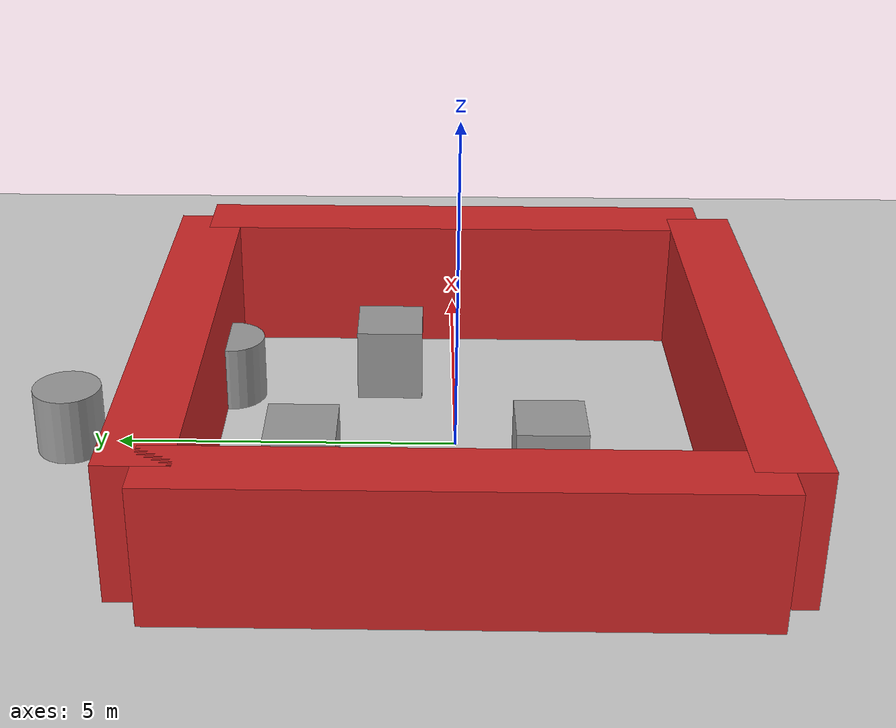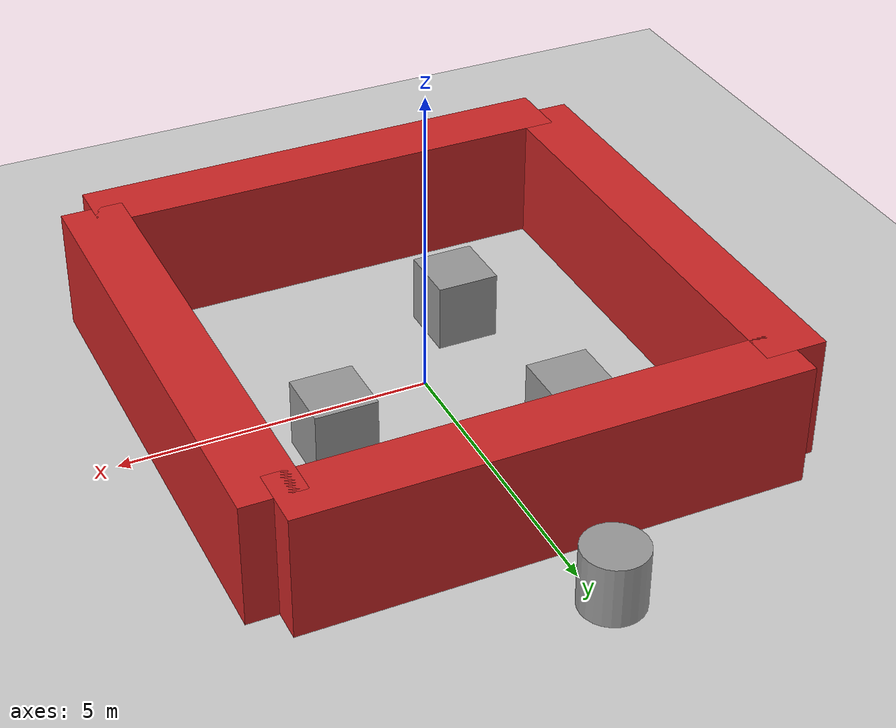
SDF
<sdf version="1.7">
 <world name="default">
  <light name="sun" type="directional">
   <pose>0 0 10 0 -0 0</pose>
   <diffuse>0.8 0.8 0.8 1</diffuse>
   <specular>0.2 0.2 0.2 1</specular>
   <attenuation>
    <range>1000</range>
    <constant>0.9</constant>
    <linear>0.01</linear>
    <quadratic>0.001</quadratic>
   </attenuation>
   <direction>-0.5 0.1 -0.9</direction>
   <spot><inner_angle>0</inner_angle><outer_angle>0</outer_angle><falloff>0</falloff></spot>
  </light>
  <model name="ground_plane">
   <static>1</static>
   <link name="link">
    <collision name="collision">
     <geometry><plane><normal>0 0 1</normal><size>100 100</size></plane></geometry>
     <surface><friction><ode><mu>100</mu><mu2>50</mu2></ode></friction></surface>
    </collision>
    <visual name="visual">
     <cast_shadows>0</cast_shadows>
     <geometry><plane><normal>0 0 1</normal><size>100 100</size></plane></geometry>
     <material>
      <script><uri>file://media/materials/scripts/gazebo.material</uri><name>Gazebo/Grey</name></script>
     </material>
    </visual>
   </link>
  </model>
  <gravity>0 0 -9.8</gravity>
  <magnetic_field>6e-06 2.3e-05 -4.2e-05</magnetic_field>
  <atmosphere type="adiabatic"/>
  <physics type="ode">
   <max_step_size>0.001</max_step_size>
   <real_time_factor>1</real_time_factor>
   <real_time_update_rate>1000</real_time_update_rate>
  </physics>
  <scene><ambient>0.4 0.4 0.4 1</ambient><background>0.7 0.7 0.7 1</background><shadows>1</shadows></scene>
  <audio><device>default</device></audio>
  <spherical_coordinates>
   <surface_model>EARTH_WGS84</surface_model>
   <latitude_deg>0</latitude_deg>
   <longitude_deg>0</longitude_deg>
   <elevation>0</elevation>
   <heading_deg>0</heading_deg>
  </spherical_coordinates>
  <model name="exterior_wall_1">
   <static>1</static>
   <pose>0 4 1 0 0 0</pose>
   <link name="link">
    <collision name="collision"><geometry><box><size>8 1 2</size></box></geometry></collision>
    <visual name="visual">
     <geometry><box><size>8 1 2</size></box></geometry>
     <material>
      <script><uri>file://media/materials/scripts/gazebo.material</uri><name>Gazebo/Red</name></script>
     </material>
    </visual>
   </link>
  </model>
  <model name="exterior_wall_2">
   <static>1</static>
   <pose>0 -4 1 0 0 0</pose>
   <link name="link">
    <collision name="collision"><geometry><box><size>8 1 2</size></box></geometry></collision>
    <visual name="visual">
     <geometry><box><size>8 1 2</size></box></geometry>
     <material>
      <script><uri>file://media/materials/scripts/gazebo.material</uri><name>Gazebo/Red</name></script>
     </material>
    </visual>
   </link>
  </model>
  <model name="exterior_wall_3">
   <static>1</static>
   <pose>4 0 1 0 0 1.5708</pose>
   <link name="link">
    <collision name="collision"><geometry><box><size>8 1 2</size></box></geometry></collision>
    <visual name="visual">
     <geometry><box><size>8 1 2</size></box></geometry>
     <material>
      <script><uri>file://media/materials/scripts/gazebo.material</uri><name>Gazebo/Red</name></script>
     </material>
    </visual>
   </link>
  </model>
  <model name="exterior_wall_4">
   <static>1</static>
   <pose>-4 0 1 0 0 1.5708</pose>
   <link name="link">
    <collision name="collision"><geometry><box><size>8 1 2</size></box></geometry></collision>
    <visual name="visual">
     <geometry><box><size>8 1 2</size></box></geometry>
     <material>
      <script><uri>file://media/materials/scripts/gazebo.material</uri><name>Gazebo/Red</name></script>
     </material>
    </visual>
   </link>
  </model>
  <model name="unit_box">
   <pose>-1.38445 2.15506 0.499995 0 1e-05 0</pose>
   <link name="link">
    <inertial>
     <mass>1</mass>
     <inertia>
      <ixx>0.166667</ixx>
      <ixy>0</ixy>
      <ixz>0</ixz>
      <iyy>0.166667</iyy>
      <iyz>0</iyz>
      <izz>0.166667</izz>
     </inertia>
    </inertial>
    <collision name="collision"><geometry><box><size>1 1 1.3</size></box></geometry></collision>
    <visual name="visual">
     <geometry><box><size>1 1 1.3</size></box></geometry>
     <material>
      <script><name>Gazebo/Grey</name><uri>file://media/materials/scripts/gazebo.material</uri></script>
     </material>
    </visual>
   </link>
  </model>
  <model name="unit_cylinder">
   <pose>1.50858 3.44634 0.499993 -3e-06 -3e-06 0</pose>
   <link name="link">
    <inertial>
     <mass>1</mass>
     <inertia><ixx>0.145833</ixx><ixy>0</ixy><ixz>0</ixz><iyy>0.145833</iyy><iyz>0</iyz><izz>0.125</izz></inertia>
    </inertial>
    <collision name="collision">
     <geometry><cylinder><radius>0.5</radius><length>1</length></cylinder></geometry>
    </collision>
    <visual name="visual">
     <geometry><cylinder><radius>0.5</radius><length>1</length></cylinder></geometry>
     <material>
      <script><name>Gazebo/Grey</name><uri>file://media/materials/scripts/gazebo.material</uri></script>
     </material>
    </visual>
   </link>
  </model>
  <model name="unit_box_0">
   <pose>1.94609 1.01005 0.499995 0 1e-05 0</pose>
   <link name="link">
    <inertial>
     <mass>1</mass>
     <inertia>
      <ixx>0.166667</ixx>
      <ixy>0</ixy>
      <ixz>0</ixz>
      <iyy>0.166667</iyy>
      <iyz>0</iyz>
      <izz>0.166667</izz>
     </inertia>
    </inertial>
    <collision name="collision"><geometry><box><size>1 1 1.2</size></box></geometry></collision>
    <visual name="visual">
     <geometry><box><size>1 1 1.2</size></box></geometry>
     <material>
      <script><name>Gazebo/Grey</name><uri>file://media/materials/scripts/gazebo.material</uri></script>
     </material>
    </visual>
   </link>
  </model>
  <model name="unit_cylinder_0">
   <pose>-0.16608 5.66524 0.499993 -3e-06 -4e-06 -0</pose>
   <link name="link">
    <inertial>
     <mass>1</mass>
     <inertia><ixx>0.145833</ixx><ixy>0</ixy><ixz>0</ixz><iyy>0.145833</iyy><iyz>0</iyz><izz>0.125</izz></inertia>
    </inertial>
    <collision name="collision">
     <geometry><cylinder><radius>0.5</radius><length>1</length></cylinder></geometry>
    </collision>
    <visual name="visual">
     <geometry><cylinder><radius>0.5</radius><length>1</length></cylinder></geometry>
     <material>
      <script><name>Gazebo/Grey</name><uri>file://media/materials/scripts/gazebo.material</uri></script>
     </material>
    </visual>
   </link>
  </model>
  <model name="unit_box_1">
   <pose>-1.11831 -1.29573 0.5 0 -0 0</pose>
   <link name="link">
    <inertial>
     <mass>1</mass>
     <inertia>
      <ixx>0.166667</ixx>
      <ixy>0</ixy>
      <ixz>0</ixz>
      <iyy>0.166667</iyy>
      <iyz>0</iyz>
      <izz>0.166667</izz>
     </inertia>
    </inertial>
    <collision name="collision"><geometry><box><size>1 1 1.2</size></box></geometry></collision>
    <visual name="visual">
     <geometry><box><size>1 1 1.2</size></box></geometry>
     <material>
      <script><name>Gazebo/Grey</name><uri>file://media/materials/scripts/gazebo.material</uri></script>
     </material>
    </visual>
   </link>
  </model>
 </world>
</sdf>
